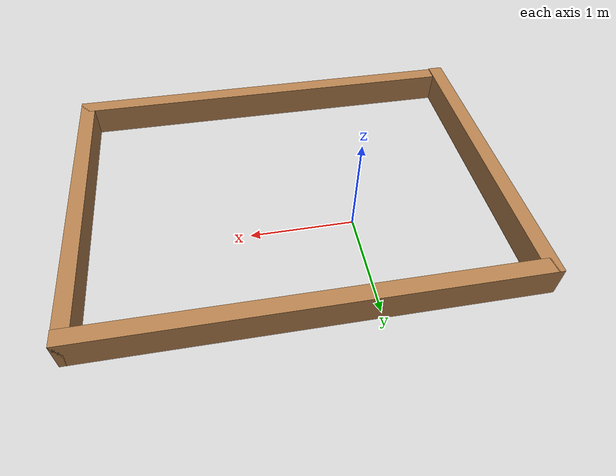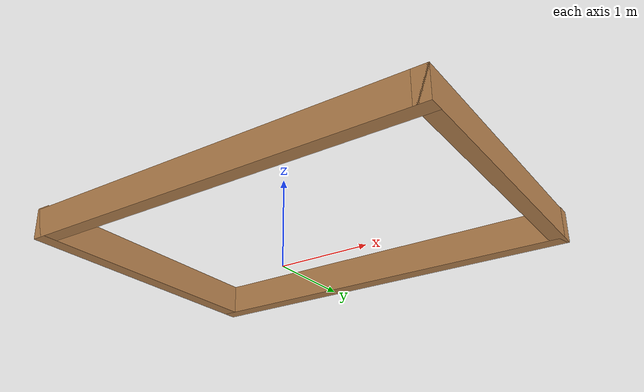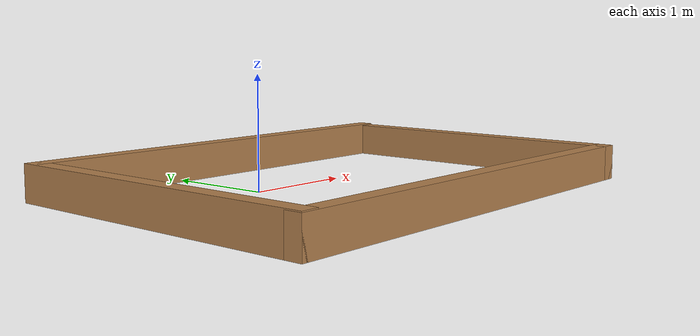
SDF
<?xml version='1.0'?>
<sdf version='1.7'>
  <model name='Track'>
    <pose>0.555 -0.435 0 0 -0 0</pose>
    <link name='Wall_10'>
      <collision name='Wall_10_Collision'>
        <geometry>
          <box>
            <size>3 0.15 0.32</size>
          </box>
        </geometry>
        <pose>0 0 0.16 0 -0 0</pose>
      </collision>
      <visual name='Wall_10_Visual'>
        <pose>0 0 0.16 0 -0 0</pose>
        <geometry>
          <box>
            <size>3 0.15 0.32</size>
          </box>
        </geometry>
        <material>
          <script>
            <uri>file://media/materials/scripts/gazebo.material</uri>
            <name>Gazebo/Wood</name>
          </script>
          <ambient>1 1 1 1</ambient>
        </material>
        <meta>
          <layer>0</layer>
        </meta>
      </visual>
      <pose>-2.025 -0 0 0 -0 1.5708</pose>
    </link>
    <link name='Wall_11'>
      <collision name='Wall_11_Collision'>
        <geometry>
          <box>
            <size>4.2 0.15 0.32</size>
          </box>
        </geometry>
        <pose>0 0 0.16 0 -0 0</pose>
      </collision>
      <visual name='Wall_11_Visual'>
        <pose>0 0 0.16 0 -0 0</pose>
        <geometry>
          <box>
            <size>4.2 0.15 0.32</size>
          </box>
        </geometry>
        <material>
          <script>
            <uri>file://media/materials/scripts/gazebo.material</uri>
            <name>Gazebo/Wood</name>
          </script>
          <ambient>1 1 1 1</ambient>
        </material>
        <meta>
          <layer>0</layer>
        </meta>
      </visual>
      <pose>0 1.425 0 0 -0 0</pose>
    </link>
    <link name='Wall_6'>
      <collision name='Wall_6_Collision'>
        <geometry>
          <box>
            <size>4.2 0.15 0.31</size>
          </box>
        </geometry>
        <pose>0 0 0.155 0 -0 0</pose>
      </collision>
      <visual name='Wall_6_Visual'>
        <pose>0 0 0.155 0 -0 0</pose>
        <geometry>
          <box>
            <size>4.2 0.15 0.31</size>
          </box>
        </geometry>
        <material>
          <script>
            <uri>file://media/materials/scripts/gazebo.material</uri>
            <name>Gazebo/Wood</name>
          </script>
          <ambient>1 1 1 1</ambient>
        </material>
        <meta>
          <layer>0</layer>
        </meta>
      </visual>
      <pose>0 -1.425 0 0 -0 0</pose>
    </link>
    <link name='Wall_8'>
      <collision name='Wall_8_Collision'>
        <geometry>
          <box>
            <size>3 0.15 0.31</size>
          </box>
        </geometry>
        <pose>0 0 0.155 0 -0 0</pose>
      </collision>
      <visual name='Wall_8_Visual'>
        <pose>0 0 0.155 0 -0 0</pose>
        <geometry>
          <box>
            <size>3 0.15 0.31</size>
          </box>
        </geometry>
        <material>
          <script>
            <uri>file://media/materials/scripts/gazebo.material</uri>
            <name>Gazebo/Wood</name>
          </script>
          <ambient>1 1 1 1</ambient>
        </material>
        <meta>
          <layer>0</layer>
        </meta>
      </visual>
      <pose>2.025 -0 0 0 -0 1.5708</pose>
    </link>
    <static>1</static>
  </model>
</sdf>
